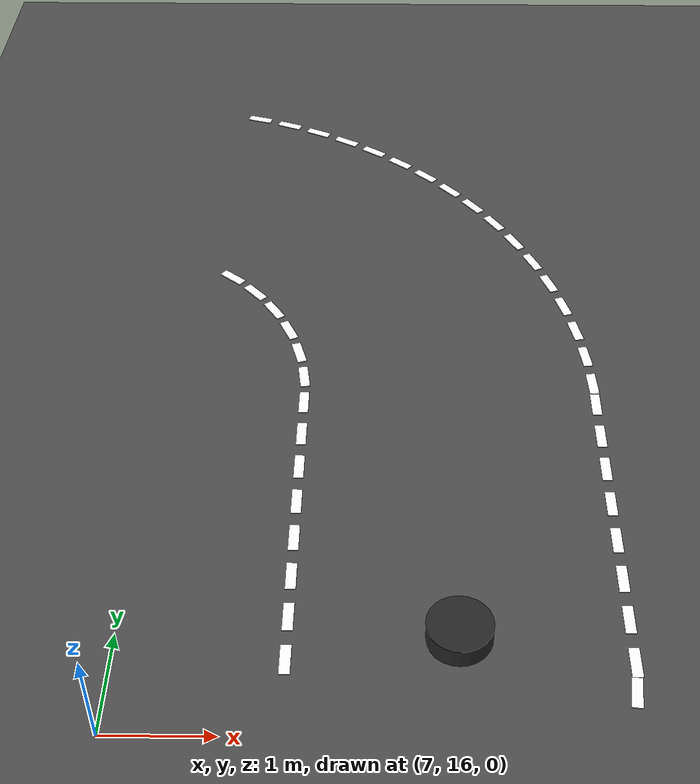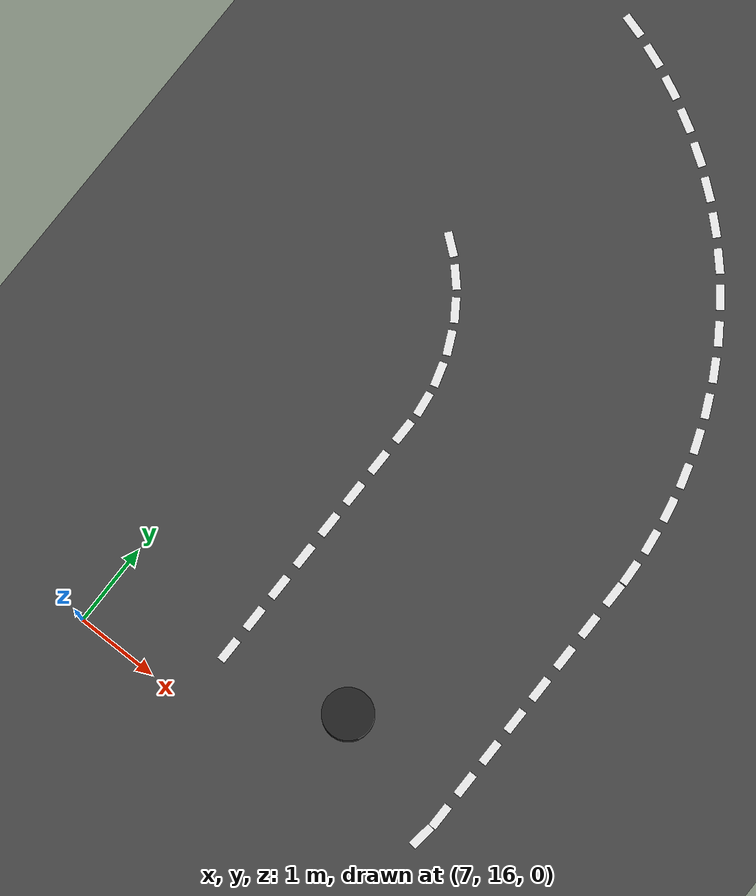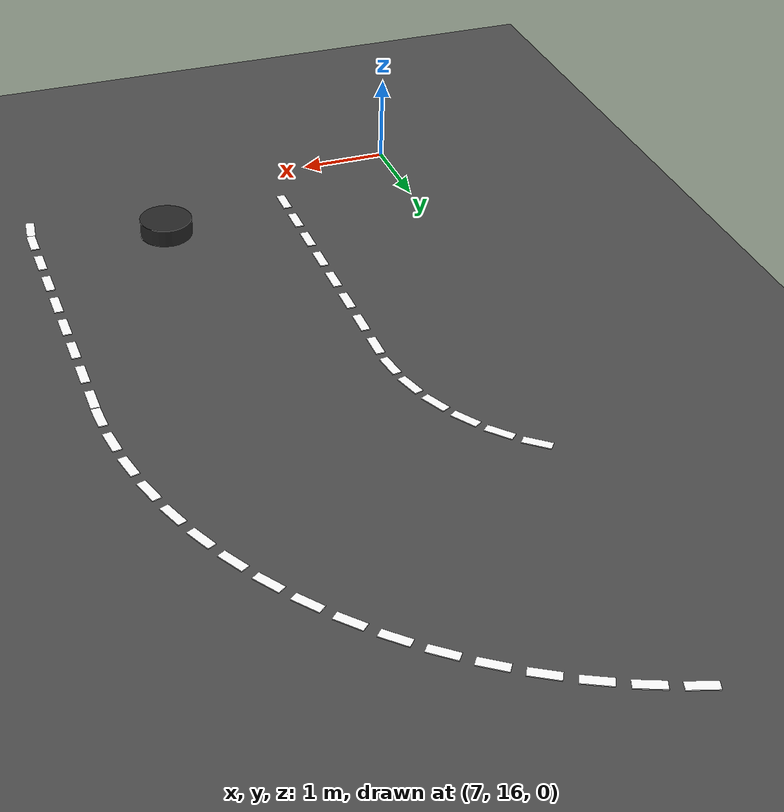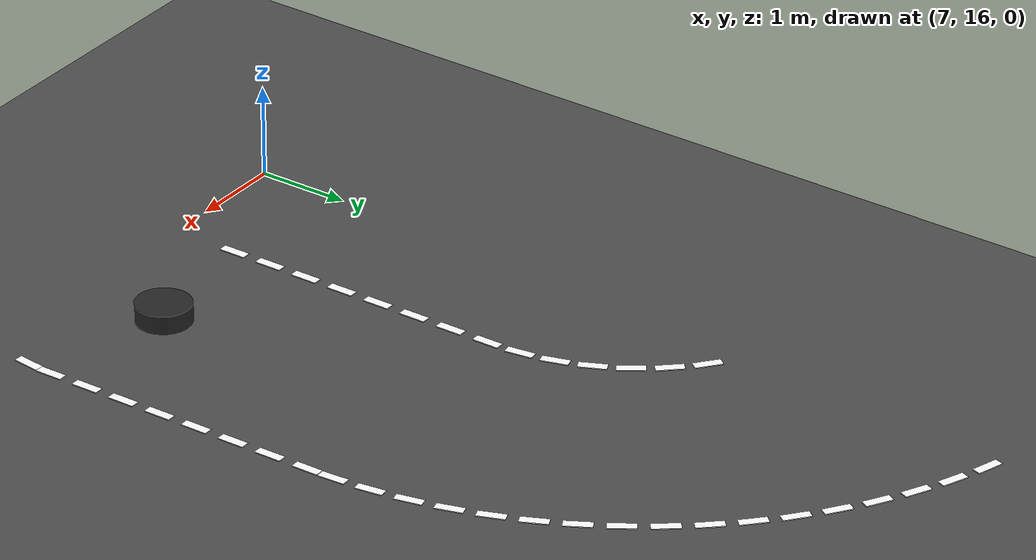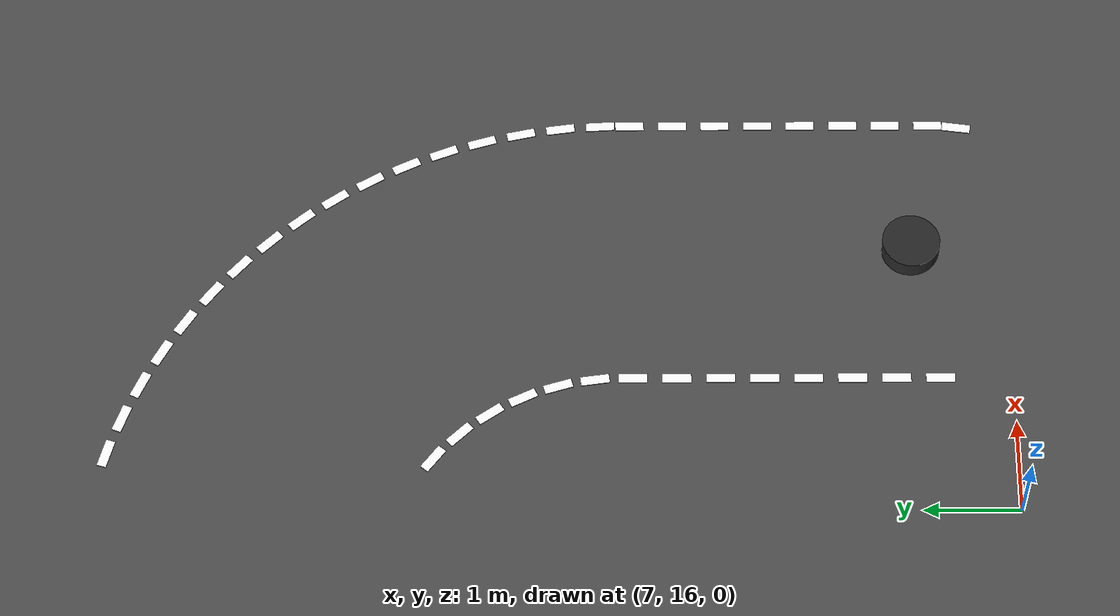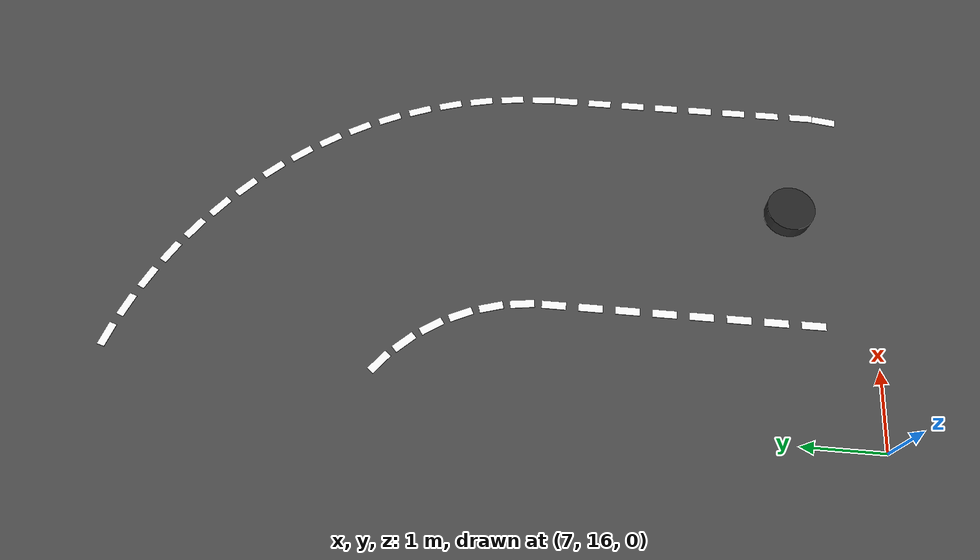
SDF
<sdf version="1.10">
 <world name="igvc_autonav">
  <model name="ground_plane">
   <static>true</static>
   <link name="link">
    <collision name="collision">
     <geometry><plane><normal>0 0 1</normal><size>60 60</size></plane></geometry>
     <surface><friction><ode><mu>0.80000000000000004</mu><mu2>0.80000000000000004</mu2></ode></friction></surface>
    </collision>
    <visual name="visual">
     <geometry><plane><normal>0 0 1</normal><size>60 60</size></plane></geometry>
     <material>
      <ambient>0.25 0.25 0.25 1</ambient>
      <diffuse>0.300000012 0.300000012 0.300000012 1</diffuse>
      <specular>0.100000001 0.100000001 0.100000001 1</specular>
     </material>
    </visual>
    <inertial>
     <mass>1</mass>
     <inertia><ixx>1</ixx><ixy>0</ixy><ixz>0</ixz><iyy>1</iyy><iyz>0</iyz><izz>1</izz></inertia>
    </inertial>
   </link>
  </model>
  <model name="lane_inner_66">
   <static>true</static>
   <pose>8.5 16.75 0.01 0 0 1.5708</pose>
   <link name="link">
    <visual name="visual">
     <geometry><box><size>0.29999999999999999 0.10000000000000001 0.01</size></box></geometry>
     <material><ambient>1 1 1 1</ambient><diffuse>1 1 1 1</diffuse><emissive>1 1 1 1</emissive></material>
    </visual>
    <inertial>
     <mass>1</mass>
     <inertia><ixx>1</ixx><ixy>0</ixy><ixz>0</ixz><iyy>1</iyy><iyz>0</iyz><izz>1</izz></inertia>
    </inertial>
   </link>
  </model>
  <model name="lane_inner_67">
   <static>true</static>
   <pose>8.5 17.199999999999999 0.01 0 0 1.5708</pose>
   <link name="link">
    <visual name="visual">
     <geometry><box><size>0.29999999999999999 0.10000000000000001 0.01</size></box></geometry>
     <material><ambient>1 1 1 1</ambient><diffuse>1 1 1 1</diffuse><emissive>1 1 1 1</emissive></material>
    </visual>
    <inertial>
     <mass>1</mass>
     <inertia><ixx>1</ixx><ixy>0</ixy><ixz>0</ixz><iyy>1</iyy><iyz>0</iyz><izz>1</izz></inertia>
    </inertial>
   </link>
  </model>
  <model name="lane_inner_68">
   <static>true</static>
   <pose>8.5 17.649999999999999 0.01 0 0 1.5708</pose>
   <link name="link">
    <visual name="visual">
     <geometry><box><size>0.29999999999999999 0.10000000000000001 0.01</size></box></geometry>
     <material><ambient>1 1 1 1</ambient><diffuse>1 1 1 1</diffuse><emissive>1 1 1 1</emissive></material>
    </visual>
    <inertial>
     <mass>1</mass>
     <inertia><ixx>1</ixx><ixy>0</ixy><ixz>0</ixz><iyy>1</iyy><iyz>0</iyz><izz>1</izz></inertia>
    </inertial>
   </link>
  </model>
  <model name="lane_inner_69">
   <static>true</static>
   <pose>8.5 18.100000000000001 0.01 0 0 1.5708</pose>
   <link name="link">
    <visual name="visual">
     <geometry><box><size>0.29999999999999999 0.10000000000000001 0.01</size></box></geometry>
     <material><ambient>1 1 1 1</ambient><diffuse>1 1 1 1</diffuse><emissive>1 1 1 1</emissive></material>
    </visual>
    <inertial>
     <mass>1</mass>
     <inertia><ixx>1</ixx><ixy>0</ixy><ixz>0</ixz><iyy>1</iyy><iyz>0</iyz><izz>1</izz></inertia>
    </inertial>
   </link>
  </model>
  <model name="lane_inner_70">
   <static>true</static>
   <pose>8.5 18.550000000000001 0.01 0 0 1.5708</pose>
   <link name="link">
    <visual name="visual">
     <geometry><box><size>0.29999999999999999 0.10000000000000001 0.01</size></box></geometry>
     <material><ambient>1 1 1 1</ambient><diffuse>1 1 1 1</diffuse><emissive>1 1 1 1</emissive></material>
    </visual>
    <inertial>
     <mass>1</mass>
     <inertia><ixx>1</ixx><ixy>0</ixy><ixz>0</ixz><iyy>1</iyy><iyz>0</iyz><izz>1</izz></inertia>
    </inertial>
   </link>
  </model>
  <model name="lane_inner_71">
   <static>true</static>
   <pose>8.5 19 0.01 0 0 1.5708</pose>
   <link name="link">
    <visual name="visual">
     <geometry><box><size>0.29999999999999999 0.10000000000000001 0.01</size></box></geometry>
     <material><ambient>1 1 1 1</ambient><diffuse>1 1 1 1</diffuse><emissive>1 1 1 1</emissive></material>
    </visual>
    <inertial>
     <mass>1</mass>
     <inertia><ixx>1</ixx><ixy>0</ixy><ixz>0</ixz><iyy>1</iyy><iyz>0</iyz><izz>1</izz></inertia>
    </inertial>
   </link>
  </model>
  <model name="lane_inner_72">
   <static>true</static>
   <pose>8.5 19.449999999999999 0.01 0 0 1.5708</pose>
   <link name="link">
    <visual name="visual">
     <geometry><box><size>0.29999999999999999 0.10000000000000001 0.01</size></box></geometry>
     <material><ambient>1 1 1 1</ambient><diffuse>1 1 1 1</diffuse><emissive>1 1 1 1</emissive></material>
    </visual>
    <inertial>
     <mass>1</mass>
     <inertia><ixx>1</ixx><ixy>0</ixy><ixz>0</ixz><iyy>1</iyy><iyz>0</iyz><izz>1</izz></inertia>
    </inertial>
   </link>
  </model>
  <model name="lane_inner_73">
   <static>true</static>
   <pose>8.5 19.899999999999999 0.01 0 0 1.5696000000000001</pose>
   <link name="link">
    <visual name="visual">
     <geometry><box><size>0.29999999999999999 0.10000000000000001 0.01</size></box></geometry>
     <material><ambient>1 1 1 1</ambient><diffuse>1 1 1 1</diffuse><emissive>1 1 1 1</emissive></material>
    </visual>
    <inertial>
     <mass>1</mass>
     <inertia><ixx>1</ixx><ixy>0</ixy><ixz>0</ixz><iyy>1</iyy><iyz>0</iyz><izz>1</izz></inertia>
    </inertial>
   </link>
  </model>
  <model name="lane_inner_74">
   <static>true</static>
   <pose>8.4834999999999994 20.2867 0.01 0 0 1.7049000000000001</pose>
   <link name="link">
    <visual name="visual">
     <geometry><box><size>0.29999999999999999 0.10000000000000001 0.01</size></box></geometry>
     <material><ambient>1 1 1 1</ambient><diffuse>1 1 1 1</diffuse><emissive>1 1 1 1</emissive></material>
    </visual>
    <inertial>
     <mass>1</mass>
     <inertia><ixx>1</ixx><ixy>0</ixy><ixz>0</ixz><iyy>1</iyy><iyz>0</iyz><izz>1</izz></inertia>
    </inertial>
   </link>
  </model>
  <model name="lane_inner_75">
   <static>true</static>
   <pose>8.4106000000000005 20.662500000000001 0.01 0 0 1.8581000000000001</pose>
   <link name="link">
    <visual name="visual">
     <geometry><box><size>0.29999999999999999 0.10000000000000001 0.01</size></box></geometry>
     <material><ambient>1 1 1 1</ambient><diffuse>1 1 1 1</diffuse><emissive>1 1 1 1</emissive></material>
    </visual>
    <inertial>
     <mass>1</mass>
     <inertia><ixx>1</ixx><ixy>0</ixy><ixz>0</ixz><iyy>1</iyy><iyz>0</iyz><izz>1</izz></inertia>
    </inertial>
   </link>
  </model>
  <model name="lane_inner_76">
   <static>true</static>
   <pose>8.2812999999999999 21.0227 0.01 0 0 2.0114000000000001</pose>
   <link name="link">
    <visual name="visual">
     <geometry><box><size>0.29999999999999999 0.10000000000000001 0.01</size></box></geometry>
     <material><ambient>1 1 1 1</ambient><diffuse>1 1 1 1</diffuse><emissive>1 1 1 1</emissive></material>
    </visual>
    <inertial>
     <mass>1</mass>
     <inertia><ixx>1</ixx><ixy>0</ixy><ixz>0</ixz><iyy>1</iyy><iyz>0</iyz><izz>1</izz></inertia>
    </inertial>
   </link>
  </model>
  <model name="lane_inner_77">
   <static>true</static>
   <pose>8.0983999999999998 21.358899999999998 0.01 0 0 2.1646000000000001</pose>
   <link name="link">
    <visual name="visual">
     <geometry><box><size>0.29999999999999999 0.10000000000000001 0.01</size></box></geometry>
     <material><ambient>1 1 1 1</ambient><diffuse>1 1 1 1</diffuse><emissive>1 1 1 1</emissive></material>
    </visual>
    <inertial>
     <mass>1</mass>
     <inertia><ixx>1</ixx><ixy>0</ixy><ixz>0</ixz><iyy>1</iyy><iyz>0</iyz><izz>1</izz></inertia>
    </inertial>
   </link>
  </model>
  <model name="lane_inner_78">
   <static>true</static>
   <pose>7.8663999999999996 21.6633 0.01 0 0 2.3178999999999998</pose>
   <link name="link">
    <visual name="visual">
     <geometry><box><size>0.29999999999999999 0.10000000000000001 0.01</size></box></geometry>
     <material><ambient>1 1 1 1</ambient><diffuse>1 1 1 1</diffuse><emissive>1 1 1 1</emissive></material>
    </visual>
    <inertial>
     <mass>1</mass>
     <inertia><ixx>1</ixx><ixy>0</ixy><ixz>0</ixz><iyy>1</iyy><iyz>0</iyz><izz>1</izz></inertia>
    </inertial>
   </link>
  </model>
  <model name="lane_inner_79">
   <static>true</static>
   <pose>7.5906000000000002 21.928699999999999 0.01 0 0 2.4710999999999999</pose>
   <link name="link">
    <visual name="visual">
     <geometry><box><size>0.29999999999999999 0.10000000000000001 0.01</size></box></geometry>
     <material><ambient>1 1 1 1</ambient><diffuse>1 1 1 1</diffuse><emissive>1 1 1 1</emissive></material>
    </visual>
    <inertial>
     <mass>1</mass>
     <inertia><ixx>1</ixx><ixy>0</ixy><ixz>0</ixz><iyy>1</iyy><iyz>0</iyz><izz>1</izz></inertia>
    </inertial>
   </link>
  </model>
  <model name="lane_outer_76">
   <static>true</static>
   <pose>11.473699999999999 16.449999999999999 0.01 0 0 1.4403000000000004</pose>
   <link name="link">
    <visual name="visual">
     <geometry><box><size>0.29999999999999999 0.10000000000000001 0.01</size></box></geometry>
     <material><ambient>1 1 1 1</ambient><diffuse>1 1 1 1</diffuse><emissive>1 1 1 1</emissive></material>
    </visual>
    <inertial>
     <mass>1</mass>
     <inertia><ixx>1</ixx><ixy>0</ixy><ixz>0</ixz><iyy>1</iyy><iyz>0</iyz><izz>1</izz></inertia>
    </inertial>
   </link>
  </model>
  <model name="lane_outer_77">
   <static>true</static>
   <pose>11.5 16.75 0.01 0 0 1.5708</pose>
   <link name="link">
    <visual name="visual">
     <geometry><box><size>0.29999999999999999 0.10000000000000001 0.01</size></box></geometry>
     <material><ambient>1 1 1 1</ambient><diffuse>1 1 1 1</diffuse><emissive>1 1 1 1</emissive></material>
    </visual>
    <inertial>
     <mass>1</mass>
     <inertia><ixx>1</ixx><ixy>0</ixy><ixz>0</ixz><iyy>1</iyy><iyz>0</iyz><izz>1</izz></inertia>
    </inertial>
   </link>
  </model>
  <model name="lane_outer_78">
   <static>true</static>
   <pose>11.5 17.199999999999999 0.01 0 0 1.5708</pose>
   <link name="link">
    <visual name="visual">
     <geometry><box><size>0.29999999999999999 0.10000000000000001 0.01</size></box></geometry>
     <material><ambient>1 1 1 1</ambient><diffuse>1 1 1 1</diffuse><emissive>1 1 1 1</emissive></material>
    </visual>
    <inertial>
     <mass>1</mass>
     <inertia><ixx>1</ixx><ixy>0</ixy><ixz>0</ixz><iyy>1</iyy><iyz>0</iyz><izz>1</izz></inertia>
    </inertial>
   </link>
  </model>
  <model name="lane_outer_79">
   <static>true</static>
   <pose>11.5 17.649999999999999 0.01 0 0 1.5708</pose>
   <link name="link">
    <visual name="visual">
     <geometry><box><size>0.29999999999999999 0.10000000000000001 0.01</size></box></geometry>
     <material><ambient>1 1 1 1</ambient><diffuse>1 1 1 1</diffuse><emissive>1 1 1 1</emissive></material>
    </visual>
    <inertial>
     <mass>1</mass>
     <inertia><ixx>1</ixx><ixy>0</ixy><ixz>0</ixz><iyy>1</iyy><iyz>0</iyz><izz>1</izz></inertia>
    </inertial>
   </link>
  </model>
  <model name="lane_outer_80">
   <static>true</static>
   <pose>11.5 18.100000000000001 0.01 0 0 1.5708</pose>
   <link name="link">
    <visual name="visual">
     <geometry><box><size>0.29999999999999999 0.10000000000000001 0.01</size></box></geometry>
     <material><ambient>1 1 1 1</ambient><diffuse>1 1 1 1</diffuse><emissive>1 1 1 1</emissive></material>
    </visual>
    <inertial>
     <mass>1</mass>
     <inertia><ixx>1</ixx><ixy>0</ixy><ixz>0</ixz><iyy>1</iyy><iyz>0</iyz><izz>1</izz></inertia>
    </inertial>
   </link>
  </model>
  <model name="lane_outer_81">
   <static>true</static>
   <pose>11.5 18.550000000000001 0.01 0 0 1.5708</pose>
   <link name="link">
    <visual name="visual">
     <geometry><box><size>0.29999999999999999 0.10000000000000001 0.01</size></box></geometry>
     <material><ambient>1 1 1 1</ambient><diffuse>1 1 1 1</diffuse><emissive>1 1 1 1</emissive></material>
    </visual>
    <inertial>
     <mass>1</mass>
     <inertia><ixx>1</ixx><ixy>0</ixy><ixz>0</ixz><iyy>1</iyy><iyz>0</iyz><izz>1</izz></inertia>
    </inertial>
   </link>
  </model>
  <model name="lane_outer_82">
   <static>true</static>
   <pose>11.5 19 0.01 0 0 1.5708</pose>
   <link name="link">
    <visual name="visual">
     <geometry><box><size>0.29999999999999999 0.10000000000000001 0.01</size></box></geometry>
     <material><ambient>1 1 1 1</ambient><diffuse>1 1 1 1</diffuse><emissive>1 1 1 1</emissive></material>
    </visual>
    <inertial>
     <mass>1</mass>
     <inertia><ixx>1</ixx><ixy>0</ixy><ixz>0</ixz><iyy>1</iyy><iyz>0</iyz><izz>1</izz></inertia>
    </inertial>
   </link>
  </model>
  <model name="lane_outer_83">
   <static>true</static>
   <pose>11.5 19.449999999999999 0.01 0 0 1.5708</pose>
   <link name="link">
    <visual name="visual">
     <geometry><box><size>0.29999999999999999 0.10000000000000001 0.01</size></box></geometry>
     <material><ambient>1 1 1 1</ambient><diffuse>1 1 1 1</diffuse><emissive>1 1 1 1</emissive></material>
    </visual>
    <inertial>
     <mass>1</mass>
     <inertia><ixx>1</ixx><ixy>0</ixy><ixz>0</ixz><iyy>1</iyy><iyz>0</iyz><izz>1</izz></inertia>
    </inertial>
   </link>
  </model>
  <model name="lane_outer_84">
   <static>true</static>
   <pose>11.5 19.899999999999999 0.01 0 0 1.5717000000000001</pose>
   <link name="link">
    <visual name="visual">
     <geometry><box><size>0.29999999999999999 0.10000000000000001 0.01</size></box></geometry>
     <material><ambient>1 1 1 1</ambient><diffuse>1 1 1 1</diffuse><emissive>1 1 1 1</emissive></material>
    </visual>
    <inertial>
     <mass>1</mass>
     <inertia><ixx>1</ixx><ixy>0</ixy><ixz>0</ixz><iyy>1</iyy><iyz>0</iyz><izz>1</izz></inertia>
    </inertial>
   </link>
  </model>
  <model name="lane_outer_85">
   <static>true</static>
   <pose>11.496 20.210699999999999 0.01 0 0 1.6283000000000001</pose>
   <link name="link">
    <visual name="visual">
     <geometry><box><size>0.29999999999999999 0.10000000000000001 0.01</size></box></geometry>
     <material><ambient>1 1 1 1</ambient><diffuse>1 1 1 1</diffuse><emissive>1 1 1 1</emissive></material>
    </visual>
    <inertial>
     <mass>1</mass>
     <inertia><ixx>1</ixx><ixy>0</ixy><ixz>0</ixz><iyy>1</iyy><iyz>0</iyz><izz>1</izz></inertia>
    </inertial>
   </link>
  </model>
  <model name="lane_outer_86">
   <static>true</static>
   <pose>11.463699999999999 20.630800000000001 0.01 0 0 1.7049000000000001</pose>
   <link name="link">
    <visual name="visual">
     <geometry><box><size>0.29999999999999999 0.10000000000000001 0.01</size></box></geometry>
     <material><ambient>1 1 1 1</ambient><diffuse>1 1 1 1</diffuse><emissive>1 1 1 1</emissive></material>
    </visual>
    <inertial>
     <mass>1</mass>
     <inertia><ixx>1</ixx><ixy>0</ixy><ixz>0</ixz><iyy>1</iyy><iyz>0</iyz><izz>1</izz></inertia>
    </inertial>
   </link>
  </model>
  <model name="lane_outer_87">
   <static>true</static>
   <pose>11.3994 21.0472 0.01 0 0 1.7815000000000001</pose>
   <link name="link">
    <visual name="visual">
     <geometry><box><size>0.29999999999999999 0.10000000000000001 0.01</size></box></geometry>
     <material><ambient>1 1 1 1</ambient><diffuse>1 1 1 1</diffuse><emissive>1 1 1 1</emissive></material>
    </visual>
    <inertial>
     <mass>1</mass>
     <inertia><ixx>1</ixx><ixy>0</ixy><ixz>0</ixz><iyy>1</iyy><iyz>0</iyz><izz>1</izz></inertia>
    </inertial>
   </link>
  </model>
  <model name="lane_outer_88">
   <static>true</static>
   <pose>11.3034 21.4574 0.01 0 0 1.8581000000000001</pose>
   <link name="link">
    <visual name="visual">
     <geometry><box><size>0.29999999999999999 0.10000000000000001 0.01</size></box></geometry>
     <material><ambient>1 1 1 1</ambient><diffuse>1 1 1 1</diffuse><emissive>1 1 1 1</emissive></material>
    </visual>
    <inertial>
     <mass>1</mass>
     <inertia><ixx>1</ixx><ixy>0</ixy><ixz>0</ixz><iyy>1</iyy><iyz>0</iyz><izz>1</izz></inertia>
    </inertial>
   </link>
  </model>
  <model name="lane_outer_89">
   <static>true</static>
   <pose>11.176299999999999 21.859100000000002 0.01 0 0 1.9348000000000001</pose>
   <link name="link">
    <visual name="visual">
     <geometry><box><size>0.29999999999999999 0.10000000000000001 0.01</size></box></geometry>
     <material><ambient>1 1 1 1</ambient><diffuse>1 1 1 1</diffuse><emissive>1 1 1 1</emissive></material>
    </visual>
    <inertial>
     <mass>1</mass>
     <inertia><ixx>1</ixx><ixy>0</ixy><ixz>0</ixz><iyy>1</iyy><iyz>0</iyz><izz>1</izz></inertia>
    </inertial>
   </link>
  </model>
  <model name="lane_outer_90">
   <static>true</static>
   <pose>11.018800000000001 22.2499 0.01 0 0 2.0114000000000001</pose>
   <link name="link">
    <visual name="visual">
     <geometry><box><size>0.29999999999999999 0.10000000000000001 0.01</size></box></geometry>
     <material><ambient>1 1 1 1</ambient><diffuse>1 1 1 1</diffuse><emissive>1 1 1 1</emissive></material>
    </visual>
    <inertial>
     <mass>1</mass>
     <inertia><ixx>1</ixx><ixy>0</ixy><ixz>0</ixz><iyy>1</iyy><iyz>0</iyz><izz>1</izz></inertia>
    </inertial>
   </link>
  </model>
  <model name="lane_outer_91">
   <static>true</static>
   <pose>10.831799999999999 22.627500000000001 0.01 0 0 2.0880000000000001</pose>
   <link name="link">
    <visual name="visual">
     <geometry><box><size>0.29999999999999999 0.10000000000000001 0.01</size></box></geometry>
     <material><ambient>1 1 1 1</ambient><diffuse>1 1 1 1</diffuse><emissive>1 1 1 1</emissive></material>
    </visual>
    <inertial>
     <mass>1</mass>
     <inertia><ixx>1</ixx><ixy>0</ixy><ixz>0</ixz><iyy>1</iyy><iyz>0</iyz><izz>1</izz></inertia>
    </inertial>
   </link>
  </model>
  <model name="lane_outer_92">
   <static>true</static>
   <pose>10.6165 22.989599999999999 0.01 0 0 2.1646000000000001</pose>
   <link name="link">
    <visual name="visual">
     <geometry><box><size>0.29999999999999999 0.10000000000000001 0.01</size></box></geometry>
     <material><ambient>1 1 1 1</ambient><diffuse>1 1 1 1</diffuse><emissive>1 1 1 1</emissive></material>
    </visual>
    <inertial>
     <mass>1</mass>
     <inertia><ixx>1</ixx><ixy>0</ixy><ixz>0</ixz><iyy>1</iyy><iyz>0</iyz><izz>1</izz></inertia>
    </inertial>
   </link>
  </model>
  <model name="lane_outer_93">
   <static>true</static>
   <pose>10.3741 23.334199999999999 0.01 0 0 2.2412999999999998</pose>
   <link name="link">
    <visual name="visual">
     <geometry><box><size>0.29999999999999999 0.10000000000000001 0.01</size></box></geometry>
     <material><ambient>1 1 1 1</ambient><diffuse>1 1 1 1</diffuse><emissive>1 1 1 1</emissive></material>
    </visual>
    <inertial>
     <mass>1</mass>
     <inertia><ixx>1</ixx><ixy>0</ixy><ixz>0</ixz><iyy>1</iyy><iyz>0</iyz><izz>1</izz></inertia>
    </inertial>
   </link>
  </model>
  <model name="lane_outer_94">
   <static>true</static>
   <pose>10.106 23.659300000000002 0.01 0 0 2.3178999999999998</pose>
   <link name="link">
    <visual name="visual">
     <geometry><box><size>0.29999999999999999 0.10000000000000001 0.01</size></box></geometry>
     <material><ambient>1 1 1 1</ambient><diffuse>1 1 1 1</diffuse><emissive>1 1 1 1</emissive></material>
    </visual>
    <inertial>
     <mass>1</mass>
     <inertia><ixx>1</ixx><ixy>0</ixy><ixz>0</ixz><iyy>1</iyy><iyz>0</iyz><izz>1</izz></inertia>
    </inertial>
   </link>
  </model>
  <model name="lane_outer_95">
   <static>true</static>
   <pose>9.8139000000000003 23.962900000000001 0.01 0 0 2.3944999999999999</pose>
   <link name="link">
    <visual name="visual">
     <geometry><box><size>0.29999999999999999 0.10000000000000001 0.01</size></box></geometry>
     <material><ambient>1 1 1 1</ambient><diffuse>1 1 1 1</diffuse><emissive>1 1 1 1</emissive></material>
    </visual>
    <inertial>
     <mass>1</mass>
     <inertia><ixx>1</ixx><ixy>0</ixy><ixz>0</ixz><iyy>1</iyy><iyz>0</iyz><izz>1</izz></inertia>
    </inertial>
   </link>
  </model>
  <model name="lane_outer_96">
   <static>true</static>
   <pose>9.4992999999999999 24.243200000000002 0.01 0 0 2.4710999999999999</pose>
   <link name="link">
    <visual name="visual">
     <geometry><box><size>0.29999999999999999 0.10000000000000001 0.01</size></box></geometry>
     <material><ambient>1 1 1 1</ambient><diffuse>1 1 1 1</diffuse><emissive>1 1 1 1</emissive></material>
    </visual>
    <inertial>
     <mass>1</mass>
     <inertia><ixx>1</ixx><ixy>0</ixy><ixz>0</ixz><iyy>1</iyy><iyz>0</iyz><izz>1</izz></inertia>
    </inertial>
   </link>
  </model>
  <model name="lane_outer_97">
   <static>true</static>
   <pose>9.1643000000000008 24.4986 0.01 0 0 2.5478000000000001</pose>
   <link name="link">
    <visual name="visual">
     <geometry><box><size>0.29999999999999999 0.10000000000000001 0.01</size></box></geometry>
     <material><ambient>1 1 1 1</ambient><diffuse>1 1 1 1</diffuse><emissive>1 1 1 1</emissive></material>
    </visual>
    <inertial>
     <mass>1</mass>
     <inertia><ixx>1</ixx><ixy>0</ixy><ixz>0</ixz><iyy>1</iyy><iyz>0</iyz><izz>1</izz></inertia>
    </inertial>
   </link>
  </model>
  <model name="lane_outer_98">
   <static>true</static>
   <pose>8.8106000000000009 24.727599999999999 0.01 0 0 2.6244000000000001</pose>
   <link name="link">
    <visual name="visual">
     <geometry><box><size>0.29999999999999999 0.10000000000000001 0.01</size></box></geometry>
     <material><ambient>1 1 1 1</ambient><diffuse>1 1 1 1</diffuse><emissive>1 1 1 1</emissive></material>
    </visual>
    <inertial>
     <mass>1</mass>
     <inertia><ixx>1</ixx><ixy>0</ixy><ixz>0</ixz><iyy>1</iyy><iyz>0</iyz><izz>1</izz></inertia>
    </inertial>
   </link>
  </model>
  <model name="lane_outer_99">
   <static>true</static>
   <pose>8.4405000000000001 24.928899999999999 0.01 0 0 2.7010000000000001</pose>
   <link name="link">
    <visual name="visual">
     <geometry><box><size>0.29999999999999999 0.10000000000000001 0.01</size></box></geometry>
     <material><ambient>1 1 1 1</ambient><diffuse>1 1 1 1</diffuse><emissive>1 1 1 1</emissive></material>
    </visual>
    <inertial>
     <mass>1</mass>
     <inertia><ixx>1</ixx><ixy>0</ixy><ixz>0</ixz><iyy>1</iyy><iyz>0</iyz><izz>1</izz></inertia>
    </inertial>
   </link>
  </model>
  <model name="lane_outer_100">
   <static>true</static>
   <pose>8.0559999999999992 25.101299999999998 0.01 0 0 2.7776000000000001</pose>
   <link name="link">
    <visual name="visual">
     <geometry><box><size>0.29999999999999999 0.10000000000000001 0.01</size></box></geometry>
     <material><ambient>1 1 1 1</ambient><diffuse>1 1 1 1</diffuse><emissive>1 1 1 1</emissive></material>
    </visual>
    <inertial>
     <mass>1</mass>
     <inertia><ixx>1</ixx><ixy>0</ixy><ixz>0</ixz><iyy>1</iyy><iyz>0</iyz><izz>1</izz></inertia>
    </inertial>
   </link>
  </model>
  <model name="lane_outer_101">
   <static>true</static>
   <pose>7.6595000000000004 25.2437 0.01 0 0 2.8542999999999998</pose>
   <link name="link">
    <visual name="visual">
     <geometry><box><size>0.29999999999999999 0.10000000000000001 0.01</size></box></geometry>
     <material><ambient>1 1 1 1</ambient><diffuse>1 1 1 1</diffuse><emissive>1 1 1 1</emissive></material>
    </visual>
    <inertial>
     <mass>1</mass>
     <inertia><ixx>1</ixx><ixy>0</ixy><ixz>0</ixz><iyy>1</iyy><iyz>0</iyz><izz>1</izz></inertia>
    </inertial>
   </link>
  </model>
  <model name="tire_2">
   <static>true</static>
   <link name="link">
    <collision name="collision">
     <pose>0 0 0.10000000000000001 0 0 0</pose>
     <geometry>
      <cylinder><radius>0.29999999999999999</radius><length>0.20000000000000001</length></cylinder>
     </geometry>
    </collision>
    <visual name="visual">
     <pose>0 0 0.10000000000000001 0 0 0</pose>
     <geometry>
      <cylinder><radius>0.29999999999999999</radius><length>0.20000000000000001</length></cylinder>
     </geometry>
     <material>
      <ambient>0.100000001 0.100000001 0.100000001 1</ambient>
      <diffuse>0.150000006 0.150000006 0.150000006 1</diffuse>
      <specular>0.100000001 0.100000001 0.100000001 1</specular>
     </material>
    </visual>
    <inertial>
     <mass>1</mass>
     <inertia><ixx>1</ixx><ixy>0</ixy><ixz>0</ixz><iyy>1</iyy><iyz>0</iyz><izz>1</izz></inertia>
    </inertial>
   </link>
   <pose>10 17 0 0 0 0</pose>
  </model>
 </world>
</sdf>
